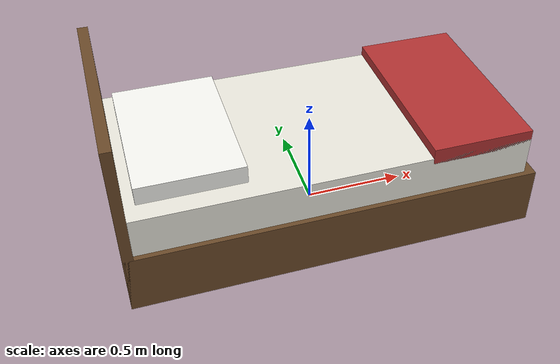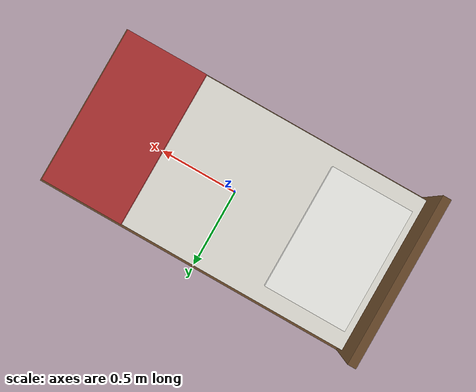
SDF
<?xml version="1.0" ?>
<!--
  bed_single | Module B - Furniture
  2.0 (X) x 1.0 (Y) m footprint, headboard at -X end. Origin: floor centre.
  Replaces dining_table_6 + chairs in first-floor cabins (converted to bedrooms).
-->
<sdf version="1.6">
  <model name="bed_single">
    <static>true</static>

    <link name="bed_link">
      <!-- ===== COLLISIONS ===== -->
      <collision name="frame_col">
        <pose>0 0 0.15 0 0 0</pose>
        <geometry><box><size>2.0 1.0 0.3</size></box></geometry>
      </collision>
      <collision name="mattress_col">
        <pose>0 0 0.4 0 0 0</pose>
        <geometry><box><size>1.9 0.95 0.2</size></box></geometry>
      </collision>
      <collision name="headboard_col">
        <pose>-0.975 0 0.45 0 0 0</pose>
        <geometry><box><size>0.05 1.0 0.9</size></box></geometry>
      </collision>

      <!-- ===== VISUALS ===== -->
      <visual name="frame_vis">
        <pose>0 0 0.15 0 0 0</pose>
        <geometry><box><size>2.0 1.0 0.3</size></box></geometry>
        <material>
          <ambient>0.28 0.19 0.11 1</ambient>
          <diffuse>0.42 0.29 0.16 1</diffuse>
          <specular>0.20 0.15 0.10 1</specular>
        </material>
      </visual>
      <visual name="mattress_vis">
        <pose>0 0 0.4 0 0 0</pose>
        <geometry><box><size>1.9 0.95 0.2</size></box></geometry>
        <material>
          <ambient>0.85 0.84 0.80 1</ambient>
          <diffuse>0.92 0.91 0.87 1</diffuse>
          <specular>0.15 0.15 0.15 1</specular>
        </material>
      </visual>
      <visual name="headboard_vis">
        <pose>-0.975 0 0.45 0 0 0</pose>
        <geometry><box><size>0.05 1.0 0.9</size></box></geometry>
        <material>
          <ambient>0.28 0.19 0.11 1</ambient>
          <diffuse>0.42 0.29 0.16 1</diffuse>
          <specular>0.20 0.15 0.10 1</specular>
        </material>
      </visual>
      <!-- Pillow -->
      <visual name="pillow_vis">
        <pose>-0.65 0 0.53 0 0 0</pose>
        <geometry><box><size>0.5 0.75 0.12</size></box></geometry>
        <material>
          <ambient>0.92 0.92 0.90 1</ambient>
          <diffuse>0.97 0.97 0.95 1</diffuse>
          <specular>0.10 0.10 0.10 1</specular>
        </material>
      </visual>
      <!-- Blanket (folded strip at foot end) -->
      <visual name="blanket_vis">
        <pose>0.7 0 0.51 0 0 0</pose>
        <geometry><box><size>0.5 0.95 0.08</size></box></geometry>
        <material>
          <ambient>0.55 0.16 0.16 1</ambient>
          <diffuse>0.70 0.20 0.20 1</diffuse>
          <specular>0.12 0.12 0.12 1</specular>
        </material>
      </visual>
    </link>
  </model>
</sdf>
